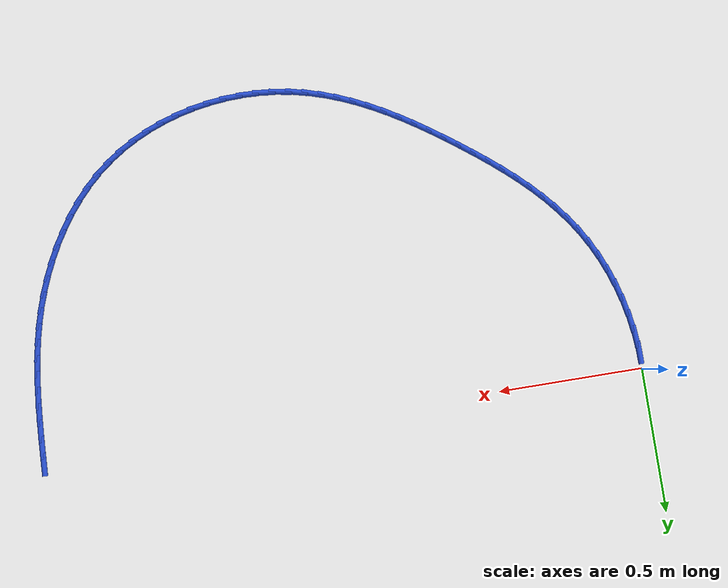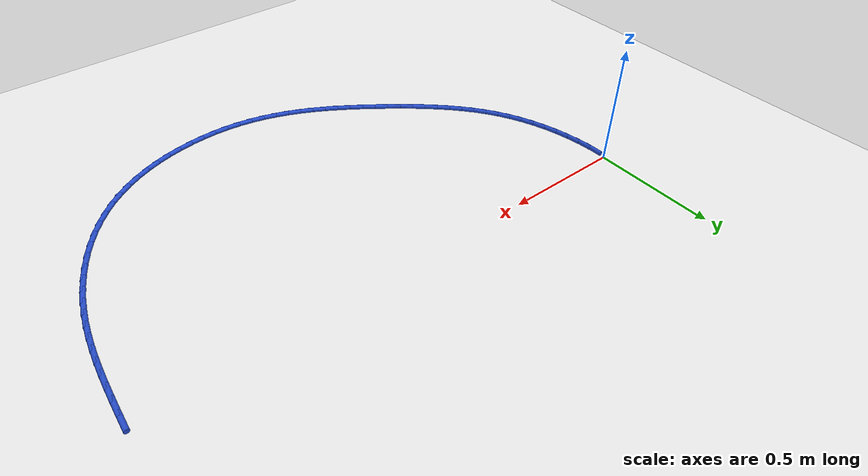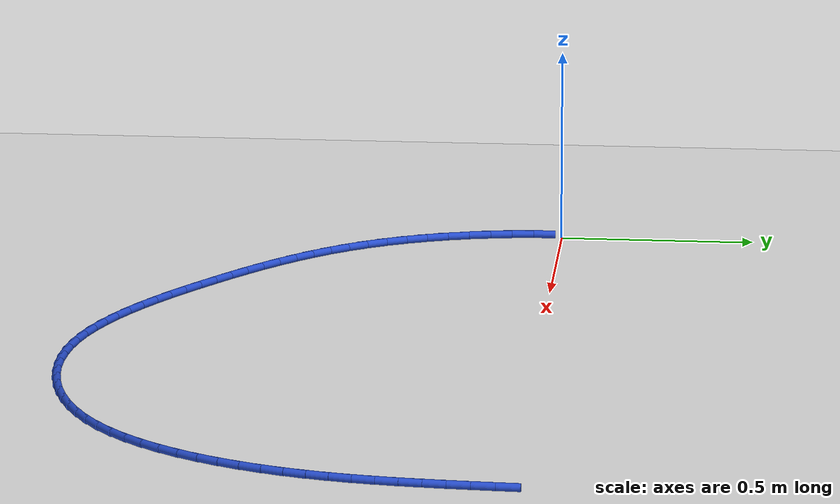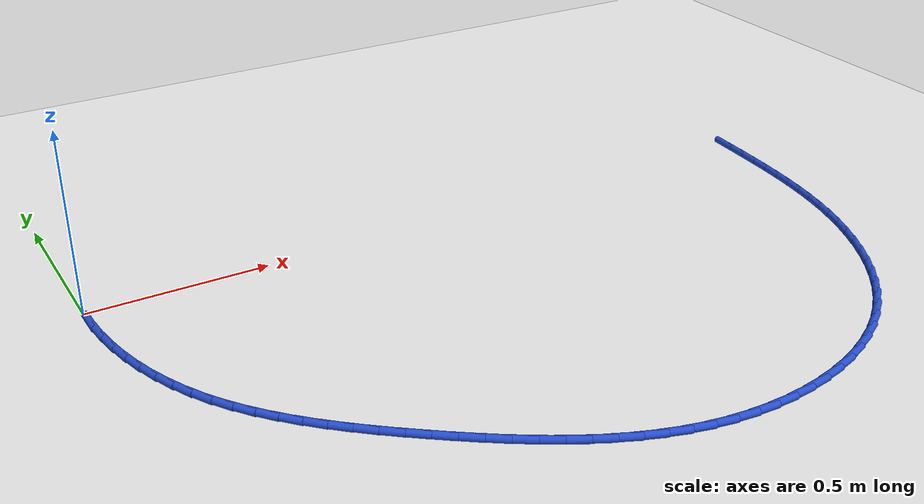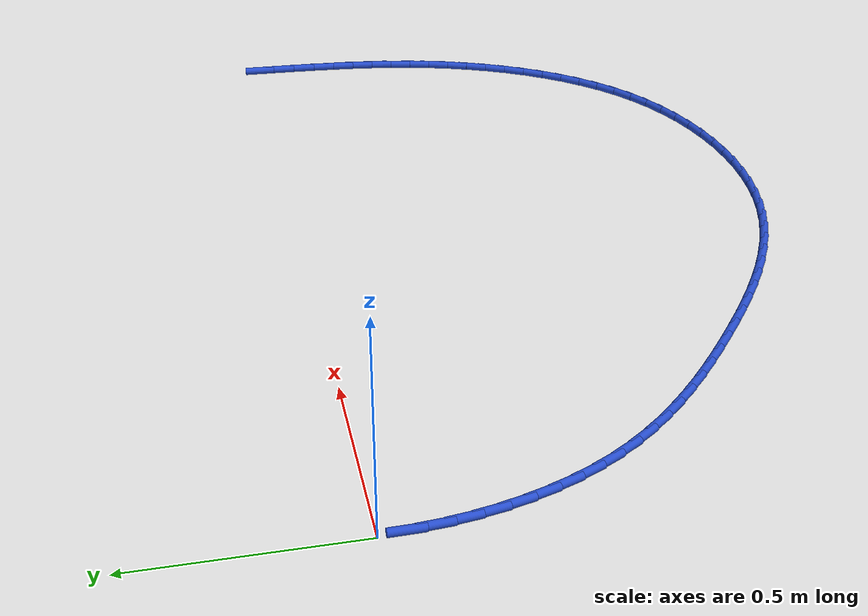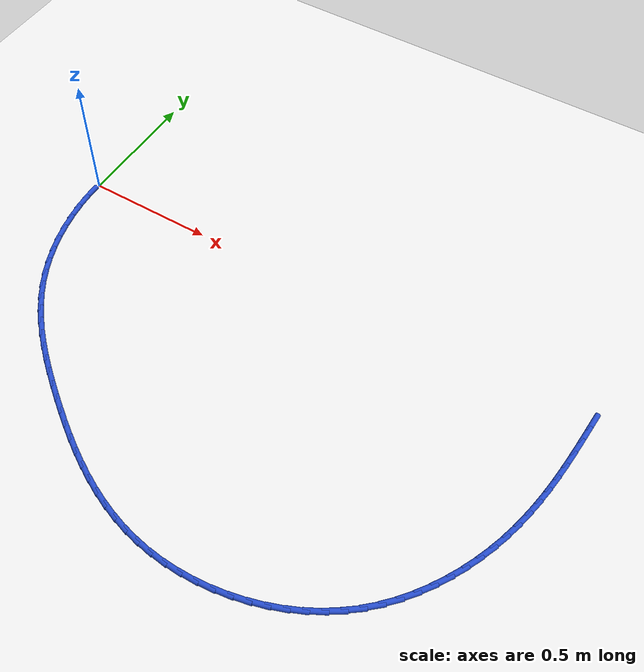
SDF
<sdf version="1.6">
 <world name="default">
  <model name="ground_plane">
   <static>1</static>
   <link name="link">
    <collision name="collision">
     <geometry><plane><normal>0 0 1</normal><size>100 100</size></plane></geometry>
     <surface><friction><ode><mu>100</mu><mu2>50</mu2></ode></friction></surface>
    </collision>
    <visual name="visual">
     <cast_shadows>0</cast_shadows>
     <geometry><plane><normal>0 0 1</normal><size>100 100</size></plane></geometry>
     <material>
      <script><uri>file://media/materials/scripts/gazebo.material</uri><name>Gazebo/WhiteGlow</name></script>
     </material>
    </visual>
   </link>
  </model>
  <model name="line">
   <link name="link_59">
    <pose>2.0898839876781494 -0.006381366114609697 0.01 0 1.57 1.5150517191839135</pose>
    <collision name="collision">
     <geometry><cylinder><radius>0.01</radius><length>0.08</length></cylinder></geometry>
    </collision>
    <visual name="visual">
     <material>
      <script><name>Gazebo/Blue</name><uri>file://media/materials/scripts/gazebo.material</uri></script>
     </material>
     <geometry><cylinder><radius>0.01</radius><length>0.08</length></cylinder></geometry>
    </visual>
   </link>
   <link name="link_60">
    <pose>2.086638204634821 -0.06454699750410281 0.01 0 1.57 1.5083135714201572</pose>
    <collision name="collision">
     <geometry><cylinder><radius>0.01</radius><length>0.08</length></cylinder></geometry>
    </collision>
    <visual name="visual">
     <material>
      <script><name>Gazebo/Blue</name><uri>file://media/materials/scripts/gazebo.material</uri></script>
     </material>
     <geometry><cylinder><radius>0.01</radius><length>0.08</length></cylinder></geometry>
    </visual>
   </link>
   <link name="link_61">
    <pose>2.083053498843538 -0.12184343945624167 0.01 0 1.57 1.4965366619213032</pose>
    <collision name="collision">
     <geometry><cylinder><radius>0.01</radius><length>0.08</length></cylinder></geometry>
    </collision>
    <visual name="visual">
     <material>
      <script><name>Gazebo/Blue</name><uri>file://media/materials/scripts/gazebo.material</uri></script>
     </material>
     <geometry><cylinder><radius>0.01</radius><length>0.08</length></cylinder></geometry>
    </visual>
   </link>
   <link name="link_62">
    <pose>2.078849958710241 -0.17834531694257985 0.01 0 1.57 1.4795817172140107</pose>
    <collision name="collision">
     <geometry><cylinder><radius>0.01</radius><length>0.08</length></cylinder></geometry>
    </collision>
    <visual name="visual">
     <material>
      <script><name>Gazebo/Blue</name><uri>file://media/materials/scripts/gazebo.material</uri></script>
     </material>
     <geometry><cylinder><radius>0.01</radius><length>0.08</length></cylinder></geometry>
    </visual>
   </link>
   <link name="link_63">
    <pose>2.0737476726408683 -0.2341272549346716 0.01 0 1.57 1.457369282473238</pose>
    <collision name="collision">
     <geometry><cylinder><radius>0.01</radius><length>0.08</length></cylinder></geometry>
    </collision>
    <visual name="visual">
     <material>
      <script><name>Gazebo/Blue</name><uri>file://media/materials/scripts/gazebo.material</uri></script>
     </material>
     <geometry><cylinder><radius>0.01</radius><length>0.08</length></cylinder></geometry>
    </visual>
   </link>
   <link name="link_64">
    <pose>2.0674667290413593 -0.28926387840406836 0.01 0 1.57 1.4298983578299171</pose>
    <collision name="collision">
     <geometry><cylinder><radius>0.01</radius><length>0.08</length></cylinder></geometry>
    </collision>
    <visual name="visual">
     <material>
      <script><name>Gazebo/Blue</name><uri>file://media/materials/scripts/gazebo.material</uri></script>
     </material>
     <geometry><cylinder><radius>0.01</radius><length>0.08</length></cylinder></geometry>
    </visual>
   </link>
   <link name="link_65">
    <pose>2.059727216317655 -0.3438298123223245 0.01 0 1.57 1.3972677476115716</pose>
    <collision name="collision">
     <geometry><cylinder><radius>0.01</radius><length>0.08</length></cylinder></geometry>
    </collision>
    <visual name="visual">
     <material>
      <script><name>Gazebo/Blue</name><uri>file://media/materials/scripts/gazebo.material</uri></script>
     </material>
     <geometry><cylinder><radius>0.01</radius><length>0.08</length></cylinder></geometry>
    </visual>
   </link>
   <link name="link_66">
    <pose>2.0502492228756934 -0.39789968166099376 0.01 0 1.57 1.3596977599420625</pose>
    <collision name="collision">
     <geometry><cylinder><radius>0.01</radius><length>0.08</length></cylinder></geometry>
    </collision>
    <visual name="visual">
     <material>
      <script><name>Gazebo/Blue</name><uri>file://media/materials/scripts/gazebo.material</uri></script>
     </material>
     <geometry><cylinder><radius>0.01</radius><length>0.08</length></cylinder></geometry>
    </visual>
   </link>
   <link name="link_67">
    <pose>2.038752837121415 -0.4515481113916283 0.01 0 1.57 1.3175485392050084</pose>
    <collision name="collision">
     <geometry><cylinder><radius>0.01</radius><length>0.08</length></cylinder></geometry>
    </collision>
    <visual name="visual">
     <material>
      <script><name>Gazebo/Blue</name><uri>file://media/materials/scripts/gazebo.material</uri></script>
     </material>
     <geometry><cylinder><radius>0.01</radius><length>0.08</length></cylinder></geometry>
    </visual>
   </link>
   <link name="link_68">
    <pose>2.0249581474607585 -0.5048497264857816 0.01 0 1.57 1.2713303631162747</pose>
    <collision name="collision">
     <geometry><cylinder><radius>0.01</radius><length>0.08</length></cylinder></geometry>
    </collision>
    <visual name="visual">
     <material>
      <script><name>Gazebo/Blue</name><uri>file://media/materials/scripts/gazebo.material</uri></script>
     </material>
     <geometry><cylinder><radius>0.01</radius><length>0.08</length></cylinder></geometry>
    </visual>
   </link>
   <link name="link_69">
    <pose>2.008585254648129 -0.5578791312642869 0.01 0 1.57 1.2220481200435382</pose>
    <collision name="collision">
     <geometry><cylinder><radius>0.01</radius><length>0.08</length></cylinder></geometry>
    </collision>
    <visual name="visual">
     <material>
      <script><name>Gazebo/Blue</name><uri>file://media/materials/scripts/gazebo.material</uri></script>
     </material>
     <geometry><cylinder><radius>0.01</radius><length>0.08</length></cylinder></geometry>
    </visual>
   </link>
   <link name="link_70">
    <pose>1.9894073200425204 -0.6106221951565627 0.01 0 1.57 1.1710189202393295</pose>
    <collision name="collision">
     <geometry><cylinder><radius>0.01</radius><length>0.08</length></cylinder></geometry>
    </collision>
    <visual name="visual">
     <material>
      <script><name>Gazebo/Blue</name><uri>file://media/materials/scripts/gazebo.material</uri></script>
     </material>
     <geometry><cylinder><radius>0.01</radius><length>0.08</length></cylinder></geometry>
    </visual>
   </link>
   <link name="link_71">
    <pose>1.9673720221381008 -0.6627729371851241 0.01 0 1.57 1.1179438636701042</pose>
    <collision name="collision">
     <geometry><cylinder><radius>0.01</radius><length>0.08</length></cylinder></geometry>
    </collision>
    <visual name="visual">
     <material>
      <script><name>Gazebo/Blue</name><uri>file://media/materials/scripts/gazebo.material</uri></script>
     </material>
     <geometry><cylinder><radius>0.01</radius><length>0.08</length></cylinder></geometry>
    </visual>
   </link>
   <link name="link_72">
    <pose>1.9424628656934233 -0.7139654630016455 0.01 0 1.57 1.062245804944601</pose>
    <collision name="collision">
     <geometry><cylinder><radius>0.01</radius><length>0.08</length></cylinder></geometry>
    </collision>
    <visual name="visual">
     <material>
      <script><name>Gazebo/Blue</name><uri>file://media/materials/scripts/gazebo.material</uri></script>
     </material>
     <geometry><cylinder><radius>0.01</radius><length>0.08</length></cylinder></geometry>
    </visual>
   </link>
   <link name="link_73">
    <pose>1.914663355467041 -0.7638338782578 0.01 0 1.57 1.003367586770341</pose>
    <collision name="collision">
     <geometry><cylinder><radius>0.01</radius><length>0.08</length></cylinder></geometry>
    </collision>
    <visual name="visual">
     <material>
      <script><name>Gazebo/Blue</name><uri>file://media/materials/scripts/gazebo.material</uri></script>
     </material>
     <geometry><cylinder><radius>0.01</radius><length>0.08</length></cylinder></geometry>
    </visual>
   </link>
   <link name="link_74">
    <pose>1.8839569962175051 -0.812012288605261 0.01 0 1.57 0.9407807366089392</pose>
    <collision name="collision">
     <geometry><cylinder><radius>0.01</radius><length>0.08</length></cylinder></geometry>
    </collision>
    <visual name="visual">
     <material>
      <script><name>Gazebo/Blue</name><uri>file://media/materials/scripts/gazebo.material</uri></script>
     </material>
     <geometry><cylinder><radius>0.01</radius><length>0.08</length></cylinder></geometry>
    </visual>
   </link>
   <link name="link_75">
    <pose>1.8503272927033705 -0.8581347996957005 0.01 0 1.57 0.8740051008957846</pose>
    <collision name="collision">
     <geometry><cylinder><radius>0.01</radius><length>0.08</length></cylinder></geometry>
    </collision>
    <visual name="visual">
     <material>
      <script><name>Gazebo/Blue</name><uri>file://media/materials/scripts/gazebo.material</uri></script>
     </material>
     <geometry><cylinder><radius>0.01</radius><length>0.08</length></cylinder></geometry>
    </visual>
   </link>
   <link name="link_76">
    <pose>1.8137577496831896 -0.9018355171807925 0.01 0 1.57 0.8026412405337118</pose>
    <collision name="collision">
     <geometry><cylinder><radius>0.01</radius><length>0.08</length></cylinder></geometry>
    </collision>
    <visual name="visual">
     <material>
      <script><name>Gazebo/Blue</name><uri>file://media/materials/scripts/gazebo.material</uri></script>
     </material>
     <geometry><cylinder><radius>0.01</radius><length>0.08</length></cylinder></geometry>
    </visual>
   </link>
   <link name="link_77">
    <pose>1.7742318719155148 -0.9427485467122099 0.01 0 1.57 0.7264164494613591</pose>
    <collision name="collision">
     <geometry><cylinder><radius>0.01</radius><length>0.08</length></cylinder></geometry>
    </collision>
    <visual name="visual">
     <material>
      <script><name>Gazebo/Blue</name><uri>file://media/materials/scripts/gazebo.material</uri></script>
     </material>
     <geometry><cylinder><radius>0.01</radius><length>0.08</length></cylinder></geometry>
    </visual>
   </link>
   <link name="link_78">
    <pose>1.7317331641588987 -0.9805079939416261 0.01 0 1.57 0.6456119534251527</pose>
    <collision name="collision">
     <geometry><cylinder><radius>0.01</radius><length>0.08</length></cylinder></geometry>
    </collision>
    <visual name="visual">
     <material>
      <script><name>Gazebo/Blue</name><uri>file://media/materials/scripts/gazebo.material</uri></script>
     </material>
     <geometry><cylinder><radius>0.01</radius><length>0.08</length></cylinder></geometry>
    </visual>
   </link>
   <link name="link_79">
    <pose>1.6862603886860783 -1.0147627916502429 0.01 0 1.57 0.5651978011051526</pose>
    <collision name="collision">
     <geometry><cylinder><radius>0.01</radius><length>0.08</length></cylinder></geometry>
    </collision>
    <visual name="visual">
     <material>
      <script><name>Gazebo/Blue</name><uri>file://media/materials/scripts/gazebo.material</uri></script>
     </material>
     <geometry><cylinder><radius>0.01</radius><length>0.08</length></cylinder></geometry>
    </visual>
   </link>
   <link name="link_80">
    <pose>1.638016153580446 -1.045359968338015 0.01 0 1.57 0.48849559482640315</pose>
    <collision name="collision">
     <geometry><cylinder><radius>0.01</radius><length>0.08</length></cylinder></geometry>
    </collision>
    <visual name="visual">
     <material>
      <script><name>Gazebo/Blue</name><uri>file://media/materials/scripts/gazebo.material</uri></script>
     </material>
     <geometry><cylinder><radius>0.01</radius><length>0.08</length></cylinder></geometry>
    </visual>
   </link>
   <link name="link_81">
    <pose>1.5873483527091672 -1.0722877400606725 0.01 0 1.57 0.4152034507194567</pose>
    <collision name="collision">
     <geometry><cylinder><radius>0.01</radius><length>0.08</length></cylinder></geometry>
    </collision>
    <visual name="visual">
     <material>
      <script><name>Gazebo/Blue</name><uri>file://media/materials/scripts/gazebo.material</uri></script>
     </material>
     <geometry><cylinder><radius>0.01</radius><length>0.08</length></cylinder></geometry>
    </visual>
   </link>
   <link name="link_82">
    <pose>1.534608002735412 -1.0955373575819756 0.01 0 1.57 0.34484728108482937</pose>
    <collision name="collision">
     <geometry><cylinder><radius>0.01</radius><length>0.08</length></cylinder></geometry>
    </collision>
    <visual name="visual">
     <material>
      <script><name>Gazebo/Blue</name><uri>file://media/materials/scripts/gazebo.material</uri></script>
     </material>
     <geometry><cylinder><radius>0.01</radius><length>0.08</length></cylinder></geometry>
    </visual>
   </link>
   <link name="link_83">
    <pose>1.480146120322351 -1.1151000716656845 0.01 0 1.57 0.2768907115586762</pose>
    <collision name="collision">
     <geometry><cylinder><radius>0.01</radius><length>0.08</length></cylinder></geometry>
    </collision>
    <visual name="visual">
     <material>
      <script><name>Gazebo/Blue</name><uri>file://media/materials/scripts/gazebo.material</uri></script>
     </material>
     <geometry><cylinder><radius>0.01</radius><length>0.08</length></cylinder></geometry>
    </visual>
   </link>
   <link name="link_84">
    <pose>1.4243137221331525 -1.1309671330755595 0.01 0 1.57 0.21075881371923932</pose>
    <collision name="collision">
     <geometry><cylinder><radius>0.01</radius><length>0.08</length></cylinder></geometry>
    </collision>
    <visual name="visual">
     <material>
      <script><name>Gazebo/Blue</name><uri>file://media/materials/scripts/gazebo.material</uri></script>
     </material>
     <geometry><cylinder><radius>0.01</radius><length>0.08</length></cylinder></geometry>
    </visual>
   </link>
   <link name="link_85">
    <pose>1.367461824830986 -1.143129792575362 0.01 0 1.57 0.1458527861224549</pose>
    <collision name="collision">
     <geometry><cylinder><radius>0.01</radius><length>0.08</length></cylinder></geometry>
    </collision>
    <visual name="visual">
     <material>
      <script><name>Gazebo/Blue</name><uri>file://media/materials/scripts/gazebo.material</uri></script>
     </material>
     <geometry><cylinder><radius>0.01</radius><length>0.08</length></cylinder></geometry>
    </visual>
   </link>
   <link name="link_86">
    <pose>1.309941445079022 -1.151579300928852 0.01 0 1.57 0.08155769174104914</pose>
    <collision name="collision">
     <geometry><cylinder><radius>0.01</radius><length>0.08</length></cylinder></geometry>
    </collision>
    <visual name="visual">
     <material>
      <script><name>Gazebo/Blue</name><uri>file://media/materials/scripts/gazebo.material</uri></script>
     </material>
     <geometry><cylinder><radius>0.01</radius><length>0.08</length></cylinder></geometry>
    </visual>
   </link>
   <link name="link_87">
    <pose>1.2521035995404297 -1.1563069088997897 0.01 0 1.57 0.017245423072378755</pose>
    <collision name="collision">
     <geometry><cylinder><radius>0.01</radius><length>0.08</length></cylinder></geometry>
    </collision>
    <visual name="visual">
     <material>
      <script><name>Gazebo/Blue</name><uri>file://media/materials/scripts/gazebo.material</uri></script>
     </material>
     <geometry><cylinder><radius>0.01</radius><length>0.08</length></cylinder></geometry>
    </visual>
   </link>
   <link name="link_88">
    <pose>1.1942993048783785 -1.1573038672519358 0.01 0 1.57 -0.047725027471073024</pose>
    <collision name="collision">
     <geometry><cylinder><radius>0.01</radius><length>0.08</length></cylinder></geometry>
    </collision>
    <visual name="visual">
     <material>
      <script><name>Gazebo/Blue</name><uri>file://media/materials/scripts/gazebo.material</uri></script>
     </material>
     <geometry><cylinder><radius>0.01</radius><length>0.08</length></cylinder></geometry>
    </visual>
   </link>
   <link name="link_89">
    <pose>1.1368795777560368 -1.154561426749051 0.01 0 1.57 -0.1140079519779005</pose>
    <collision name="collision">
     <geometry><cylinder><radius>0.01</radius><length>0.08</length></cylinder></geometry>
    </collision>
    <visual name="visual">
     <material>
      <script><name>Gazebo/Blue</name><uri>file://media/materials/scripts/gazebo.material</uri></script>
     </material>
     <geometry><cylinder><radius>0.01</radius><length>0.08</length></cylinder></geometry>
    </visual>
   </link>
   <link name="link_90">
    <pose>1.080195434836576 -1.1480708381548954 0.01 0 1.57 -0.18212246954004385</pose>
    <collision name="collision">
     <geometry><cylinder><radius>0.01</radius><length>0.08</length></cylinder></geometry>
    </collision>
    <visual name="visual">
     <material>
      <script><name>Gazebo/Blue</name><uri>file://media/materials/scripts/gazebo.material</uri></script>
     </material>
     <geometry><cylinder><radius>0.01</radius><length>0.08</length></cylinder></geometry>
    </visual>
   </link>
   <link name="link_91">
    <pose>1.0245883487561624 -1.1378300631188485 0.01 0 1.57 -0.24930777217574873</pose>
    <collision name="collision">
     <geometry><cylinder><radius>0.01</radius><length>0.08</length></cylinder></geometry>
    </collision>
    <visual name="visual">
     <material>
      <script><name>Gazebo/Blue</name><uri>file://media/materials/scripts/gazebo.material</uri></script>
     </material>
     <geometry><cylinder><radius>0.01</radius><length>0.08</length></cylinder></geometry>
    </visual>
   </link>
   <link name="link_92">
    <pose>0.970194792820396 -1.123981208634713 0.01 0 1.57 -0.3120707299414245</pose>
    <collision name="collision">
     <geometry><cylinder><radius>0.01</radius><length>0.08</length></cylinder></geometry>
    </collision>
    <visual name="visual">
     <material>
      <script><name>Gazebo/Blue</name><uri>file://media/materials/scripts/gazebo.material</uri></script>
     </material>
     <geometry><cylinder><radius>0.01</radius><length>0.08</length></cylinder></geometry>
    </visual>
   </link>
   <link name="link_93">
    <pose>0.9169539937660756 -1.1068050756838124 0.01 0 1.57 -0.36978809050470673</pose>
    <collision name="collision">
     <geometry><cylinder><radius>0.01</radius><length>0.08</length></cylinder></geometry>
    </collision>
    <visual name="visual">
     <material>
      <script><name>Gazebo/Blue</name><uri>file://media/materials/scripts/gazebo.material</uri></script>
     </material>
     <geometry><cylinder><radius>0.01</radius><length>0.08</length></cylinder></geometry>
    </visual>
   </link>
   <link name="link_94">
    <pose>0.8647971855778198 -1.0865880853537087 0.01 0 1.57 -0.4221661130191056</pose>
    <collision name="collision">
     <geometry><cylinder><radius>0.01</radius><length>0.08</length></cylinder></geometry>
    </collision>
    <visual name="visual">
     <material>
      <script><name>Gazebo/Blue</name><uri>file://media/materials/scripts/gazebo.material</uri></script>
     </material>
     <geometry><cylinder><radius>0.01</radius><length>0.08</length></cylinder></geometry>
    </visual>
   </link>
   <link name="link_95">
    <pose>0.8136556022402442 -1.063616658731963 0.01 0 1.57 -0.46908156035896353</pose>
    <collision name="collision">
     <geometry><cylinder><radius>0.01</radius><length>0.08</length></cylinder></geometry>
    </collision>
    <visual name="visual">
     <material>
      <script><name>Gazebo/Blue</name><uri>file://media/materials/scripts/gazebo.material</uri></script>
     </material>
     <geometry><cylinder><radius>0.01</radius><length>0.08</length></cylinder></geometry>
    </visual>
   </link>
   <link name="link_96">
    <pose>0.7634604777379649 -1.0381772169061376 0.01 0 1.57 -0.510538861231617</pose>
    <collision name="collision">
     <geometry><cylinder><radius>0.01</radius><length>0.08</length></cylinder></geometry>
    </collision>
    <visual name="visual">
     <material>
      <script><name>Gazebo/Blue</name><uri>file://media/materials/scripts/gazebo.material</uri></script>
     </material>
     <geometry><cylinder><radius>0.01</radius><length>0.08</length></cylinder></geometry>
    </visual>
   </link>
   <link name="link_97">
    <pose>0.7141430460555995 -1.0105561809637935 0.01 0 1.57 -0.546627771939344</pose>
    <collision name="collision">
     <geometry><cylinder><radius>0.01</radius><length>0.08</length></cylinder></geometry>
    </collision>
    <visual name="visual">
     <material>
      <script><name>Gazebo/Blue</name><uri>file://media/materials/scripts/gazebo.material</uri></script>
     </material>
     <geometry><cylinder><radius>0.01</radius><length>0.08</length></cylinder></geometry>
    </visual>
   </link>
   <link name="link_98">
    <pose>0.6656345411777641 -0.9810399719924926 0.01 0 1.57 -0.5774860691662774</pose>
    <collision name="collision">
     <geometry><cylinder><radius>0.01</radius><length>0.08</length></cylinder></geometry>
    </collision>
    <visual name="visual">
     <material>
      <script><name>Gazebo/Blue</name><uri>file://media/materials/scripts/gazebo.material</uri></script>
     </material>
     <geometry><cylinder><radius>0.01</radius><length>0.08</length></cylinder></geometry>
    </visual>
   </link>
   <link name="link_99">
    <pose>0.6178661970890751 -0.9499150110797968 0.01 0 1.57 -0.6032691142845217</pose>
    <collision name="collision">
     <geometry><cylinder><radius>0.01</radius><length>0.08</length></cylinder></geometry>
    </collision>
    <visual name="visual">
     <material>
      <script><name>Gazebo/Blue</name><uri>file://media/materials/scripts/gazebo.material</uri></script>
     </material>
     <geometry><cylinder><radius>0.01</radius><length>0.08</length></cylinder></geometry>
    </visual>
   </link>
   <link name="link_100">
    <pose>0.5707692477741483 -0.9174677193132664 0.01 0 1.57 -0.6241263178808611</pose>
    <collision name="collision">
     <geometry><cylinder><radius>0.01</radius><length>0.08</length></cylinder></geometry>
    </collision>
    <visual name="visual">
     <material>
      <script><name>Gazebo/Blue</name><uri>file://media/materials/scripts/gazebo.material</uri></script>
     </material>
     <geometry><cylinder><radius>0.01</radius><length>0.08</length></cylinder></geometry>
    </visual>
   </link>
   <link name="link_101">
    <pose>0.5242749272176018 -0.8839845177804647 0.01 0 1.57 -0.6403642364189949</pose>
    <collision name="collision">
     <geometry><cylinder><radius>0.01</radius><length>0.08</length></cylinder></geometry>
    </collision>
    <visual name="visual">
     <material>
      <script><name>Gazebo/Blue</name><uri>file://media/materials/scripts/gazebo.material</uri></script>
     </material>
     <geometry><cylinder><radius>0.01</radius><length>0.08</length></cylinder></geometry>
    </visual>
   </link>
   <link name="link_102">
    <pose>0.4783206736490926 -0.8497435381569189 0.01 0 1.57 -0.6568099085547238</pose>
    <collision name="collision">
     <geometry><cylinder><radius>0.01</radius><length>0.08</length></cylinder></geometry>
    </collision>
    <visual name="visual">
     <material>
      <script><name>Gazebo/Blue</name><uri>file://media/materials/scripts/gazebo.material</uri></script>
     </material>
     <geometry><cylinder><radius>0.01</radius><length>0.08</length></cylinder></geometry>
    </visual>
   </link>
   <link name="link_103">
    <pose>0.4330063366444599 -0.8148059164065891 0.01 0 1.57 -0.6786500212895491</pose>
    <collision name="collision">
     <geometry><cylinder><radius>0.01</radius><length>0.08</length></cylinder></geometry>
    </collision>
    <visual name="visual">
     <material>
      <script><name>Gazebo/Blue</name><uri>file://media/materials/scripts/gazebo.material</uri></script>
     </material>
     <geometry><cylinder><radius>0.01</radius><length>0.08</length></cylinder></geometry>
    </visual>
   </link>
   <link name="link_104">
    <pose>0.3886059483660876 -0.7790000653789567 0.01 0 1.57 -0.7062897741202062</pose>
    <collision name="collision">
     <geometry><cylinder><radius>0.01</radius><length>0.08</length></cylinder></geometry>
    </collision>
    <visual name="visual">
     <material>
      <script><name>Gazebo/Blue</name><uri>file://media/materials/scripts/gazebo.material</uri></script>
     </material>
     <geometry><cylinder><radius>0.01</radius><length>0.08</length></cylinder></geometry>
    </visual>
   </link>
   <link name="link_105">
    <pose>0.3454021030834057 -0.7421429582023619 0.01 0 1.57 -0.7399084514545755</pose>
    <collision name="collision">
     <geometry><cylinder><radius>0.01</radius><length>0.08</length></cylinder></geometry>
    </collision>
    <visual name="visual">
     <material>
      <script><name>Gazebo/Blue</name><uri>file://media/materials/scripts/gazebo.material</uri></script>
     </material>
     <geometry><cylinder><radius>0.01</radius><length>0.08</length></cylinder></geometry>
    </visual>
   </link>
   <link name="link_106">
    <pose>0.30367739506584257 -0.7040515680051439 0.01 0 1.57 -0.7796820206737036</pose>
    <collision name="collision">
     <geometry><cylinder><radius>0.01</radius><length>0.08</length></cylinder></geometry>
    </collision>
    <visual name="visual">
     <material>
      <script><name>Gazebo/Blue</name><uri>file://media/materials/scripts/gazebo.material</uri></script>
     </material>
     <geometry><cylinder><radius>0.01</radius><length>0.08</length></cylinder></geometry>
    </visual>
   </link>
   <link name="link_107">
    <pose>0.263714418582827 -0.6645428679156421 0.01 0 1.57 -0.8257467394690552</pose>
    <collision name="collision">
     <geometry><cylinder><radius>0.01</radius><length>0.08</length></cylinder></geometry>
    </collision>
    <visual name="visual">
     <material>
      <script><name>Gazebo/Blue</name><uri>file://media/materials/scripts/gazebo.material</uri></script>
     </material>
     <geometry><cylinder><radius>0.01</radius><length>0.08</length></cylinder></geometry>
    </visual>
   </link>
   <link name="link_108">
    <pose>0.2257957679037876 -0.6234338310621952 0.01 0 1.57 -0.8781522158577109</pose>
    <collision name="collision">
     <geometry><cylinder><radius>0.01</radius><length>0.08</length></cylinder></geometry>
    </collision>
    <visual name="visual">
     <material>
      <script><name>Gazebo/Blue</name><uri>file://media/materials/scripts/gazebo.material</uri></script>
     </material>
     <geometry><cylinder><radius>0.01</radius><length>0.08</length></cylinder></geometry>
    </visual>
   </link>
   <link name="link_109">
    <pose>0.19020403729815416 -0.5805414305731441 0.01 0 1.57 -0.9368052793674642</pose>
    <collision name="collision">
     <geometry><cylinder><radius>0.01</radius><length>0.08</length></cylinder></geometry>
    </collision>
    <visual name="visual">
     <material>
      <script><name>Gazebo/Blue</name><uri>file://media/materials/scripts/gazebo.material</uri></script>
     </material>
     <geometry><cylinder><radius>0.01</radius><length>0.08</length></cylinder></geometry>
    </visual>
   </link>
   <link name="link_110">
    <pose>0.15722182103535506 -0.5356826395768275 0.01 0 1.57 -1.001391533561687</pose>
    <collision name="collision">
     <geometry><cylinder><radius>0.01</radius><length>0.08</length></cylinder></geometry>
    </collision>
    <visual name="visual">
     <material>
      <script><name>Gazebo/Blue</name><uri>file://media/materials/scripts/gazebo.material</uri></script>
     </material>
     <geometry><cylinder><radius>0.01</radius><length>0.08</length></cylinder></geometry>
    </visual>
   </link>
   <link name="link_111">
    <pose>0.1271311572149328 -0.48867546178537424 0.01 0 1.57 -1.0689326602641716</pose>
    <collision name="collision">
     <geometry><cylinder><radius>0.01</radius><length>0.08</length></cylinder></geometry>
    </collision>
    <visual name="visual">
     <material>
      <script><name>Gazebo/Blue</name><uri>file://media/materials/scripts/gazebo.material</uri></script>
     </material>
     <geometry><cylinder><radius>0.01</radius><length>0.08</length></cylinder></geometry>
    </visual>
   </link>
   <link name="link_112">
    <pose>0.10013689614135239 -0.4394809300325624 0.01 0 1.57 -1.1343833100421572</pose>
    <collision name="collision">
     <geometry><cylinder><radius>0.01</radius><length>0.08</length></cylinder></geometry>
    </collision>
    <visual name="visual">
     <material>
      <script><name>Gazebo/Blue</name><uri>file://media/materials/scripts/gazebo.material</uri></script>
     </material>
     <geometry><cylinder><radius>0.01</radius><length>0.08</length></cylinder></geometry>
    </visual>
   </link>
   <link name="link_113">
    <pose>0.0762883393926027 -0.3883483092191646 0.01 0 1.57 -1.197537198604383</pose>
    <collision name="collision">
     <geometry><cylinder><radius>0.01</radius><length>0.08</length></cylinder></geometry>
    </collision>
    <visual name="visual">
     <material>
      <script><name>Gazebo/Blue</name><uri>file://media/materials/scripts/gazebo.material</uri></script>
     </material>
     <geometry><cylinder><radius>0.01</radius><length>0.08</length></cylinder></geometry>
    </visual>
   </link>
   <link name="link_114">
    <pose>0.05561610407289048 -0.3355614866091214 0.01 0 1.57 -1.2588336058925418</pose>
    <collision name="collision">
     <geometry><cylinder><radius>0.01</radius><length>0.08</length></cylinder></geometry>
    </collision>
    <visual name="visual">
     <material>
      <script><name>Gazebo/Blue</name><uri>file://media/materials/scripts/gazebo.material</uri></script>
     </material>
     <geometry><cylinder><radius>0.01</radius><length>0.08</length></cylinder></geometry>
    </visual>
   </link>
   <link name="link_115">
    <pose>0.03815080728642253 -0.281404349466373 0.01 0 1.57 -1.3187285561731052</pose>
    <collision name="collision">
     <geometry><cylinder><radius>0.01</radius><length>0.08</length></cylinder></geometry>
    </collision>
    <visual name="visual">
     <material>
      <script><name>Gazebo/Blue</name><uri>file://media/materials/scripts/gazebo.material</uri></script>
     </material>
     <geometry><cylinder><radius>0.01</radius><length>0.08</length></cylinder></geometry>
    </visual>
   </link>
   <link name="link_116">
    <pose>0.023923066137406464 -0.2261607850548617 0.01 0 1.57 -1.3776875018794976</pose>
    <collision name="collision">
     <geometry><cylinder><radius>0.01</radius><length>0.08</length></cylinder></geometry>
    </collision>
    <visual name="visual">
     <material>
      <script><name>Gazebo/Blue</name><uri>file://media/materials/scripts/gazebo.material</uri></script>
     </material>
     <geometry><cylinder><radius>0.01</radius><length>0.08</length></cylinder></geometry>
    </visual>
   </link>
   <link name="link_117">
    <pose>0.012963497730049078 -0.1701146806385279 0.01 0 1.57 -1.4361816129771177</pose>
    <collision name="collision">
     <geometry><cylinder><radius>0.01</radius><length>0.08</length></cylinder></geometry>
    </collision>
    <visual name="visual">
     <material>
      <script><name>Gazebo/Blue</name><uri>file://media/materials/scripts/gazebo.material</uri></script>
     </material>
     <geometry><cylinder><radius>0.01</radius><length>0.08</length></cylinder></geometry>
    </visual>
   </link>
   <link name="link_118">
    <pose>0.005302719168557478 -0.11354992348131246 0.01 0 1.57 -1.4946864456958893</pose>
    <collision name="collision">
     <geometry><cylinder><radius>0.01</radius><length>0.08</length></cylinder></geometry>
    </collision>
    <visual name="visual">
     <material>
      <script><name>Gazebo/Blue</name><uri>file://media/materials/scripts/gazebo.material</uri></script>
     </material>
     <geometry><cylinder><radius>0.01</radius><length>0.08</length></cylinder></geometry>
    </visual>
   </link>
   <link name="link_119">
    <pose>0.0009713475571387093 -0.05675040084715562 0.01 0 1.57 -1.553681862345237</pose>
    <collision name="collision">
     <geometry><cylinder><radius>0.01</radius><length>0.08</length></cylinder></geometry>
    </collision>
    <visual name="visual">
     <material>
      <script><name>Gazebo/Blue</name><uri>file://media/materials/scripts/gazebo.material</uri></script>
     </material>
     <geometry><cylinder><radius>0.01</radius><length>0.08</length></cylinder></geometry>
    </visual>
   </link>
  </model>
 </world>
</sdf>
